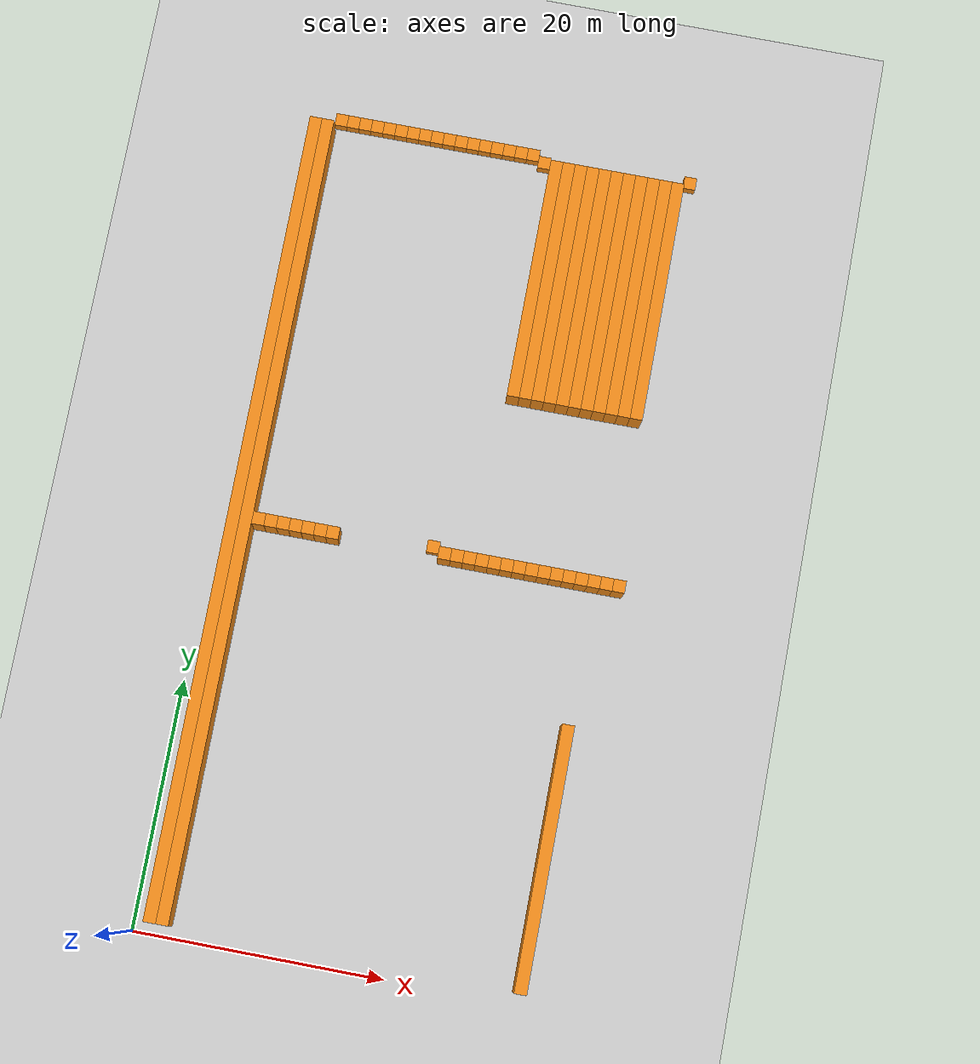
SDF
<sdf version="1.6">
 <world name="default">
  <include><uri>model://ground_plane</uri></include>
  <model name="unit_box_000">
   <pose>1.50    34.00     1.50 0 0 0</pose>
   <static>1</static>
   <link name="link">
    <inertial>
     <mass>5000</mass>
     <inertia><ixx>200</ixx><ixy>0</ixy><ixz>0</ixz><iyy>200</iyy><iyz>0</iyz><izz>200</izz></inertia>
    </inertial>
    <collision name="collision"><geometry><box><size>1 66 3</size></box></geometry></collision>
    <visual name="visual">
     <geometry><box><size>1 66 3</size></box></geometry>
     <material>
      <script><name>Gazebo/Orange</name><uri>file://media/materials/scripts/gazebo.material</uri></script>
     </material>
    </visual>
   </link>
  </model>
  <model name="unit_box_001">
   <pose>2.50    34.00     1.50 0 0 0</pose>
   <static>1</static>
   <link name="link">
    <inertial>
     <mass>5000</mass>
     <inertia><ixx>200</ixx><ixy>0</ixy><ixz>0</ixz><iyy>200</iyy><iyz>0</iyz><izz>200</izz></inertia>
    </inertial>
    <collision name="collision"><geometry><box><size>1 66 3</size></box></geometry></collision>
    <visual name="visual">
     <geometry><box><size>1 66 3</size></box></geometry>
     <material>
      <script><name>Gazebo/Orange</name><uri>file://media/materials/scripts/gazebo.material</uri></script>
     </material>
    </visual>
   </link>
  </model>
  <model name="unit_box_003">
   <pose>3.50    33.50     1.50 0 0 0</pose>
   <static>1</static>
   <link name="link">
    <inertial>
     <mass>5000</mass>
     <inertia><ixx>200</ixx><ixy>0</ixy><ixz>0</ixz><iyy>200</iyy><iyz>0</iyz><izz>200</izz></inertia>
    </inertial>
    <collision name="collision"><geometry><box><size>1 1 3</size></box></geometry></collision>
    <visual name="visual">
     <geometry><box><size>1 1 3</size></box></geometry>
     <material>
      <script><name>Gazebo/Orange</name><uri>file://media/materials/scripts/gazebo.material</uri></script>
     </material>
    </visual>
   </link>
  </model>
  <model name="unit_box_004">
   <pose>3.50    67.50     1.50 0 0 0</pose>
   <static>1</static>
   <link name="link">
    <inertial>
     <mass>5000</mass>
     <inertia><ixx>200</ixx><ixy>0</ixy><ixz>0</ixz><iyy>200</iyy><iyz>0</iyz><izz>200</izz></inertia>
    </inertial>
    <collision name="collision"><geometry><box><size>1 1 1</size></box></geometry></collision>
    <visual name="visual">
     <geometry><box><size>1 1 1</size></box></geometry>
     <material>
      <script><name>Gazebo/Orange</name><uri>file://media/materials/scripts/gazebo.material</uri></script>
     </material>
    </visual>
   </link>
  </model>
  <model name="unit_box_006">
   <pose>4.50    33.50     1.50 0 0 0</pose>
   <static>1</static>
   <link name="link">
    <inertial>
     <mass>5000</mass>
     <inertia><ixx>200</ixx><ixy>0</ixy><ixz>0</ixz><iyy>200</iyy><iyz>0</iyz><izz>200</izz></inertia>
    </inertial>
    <collision name="collision"><geometry><box><size>1 1 3</size></box></geometry></collision>
    <visual name="visual">
     <geometry><box><size>1 1 3</size></box></geometry>
     <material>
      <script><name>Gazebo/Orange</name><uri>file://media/materials/scripts/gazebo.material</uri></script>
     </material>
    </visual>
   </link>
  </model>
  <model name="unit_box_007">
   <pose>4.50    67.50     1.50 0 0 0</pose>
   <static>1</static>
   <link name="link">
    <inertial>
     <mass>5000</mass>
     <inertia><ixx>200</ixx><ixy>0</ixy><ixz>0</ixz><iyy>200</iyy><iyz>0</iyz><izz>200</izz></inertia>
    </inertial>
    <collision name="collision"><geometry><box><size>1 1 1</size></box></geometry></collision>
    <visual name="visual">
     <geometry><box><size>1 1 1</size></box></geometry>
     <material>
      <script><name>Gazebo/Orange</name><uri>file://media/materials/scripts/gazebo.material</uri></script>
     </material>
    </visual>
   </link>
  </model>
  <model name="unit_box_009">
   <pose>5.50    33.50     1.50 0 0 0</pose>
   <static>1</static>
   <link name="link">
    <inertial>
     <mass>5000</mass>
     <inertia><ixx>200</ixx><ixy>0</ixy><ixz>0</ixz><iyy>200</iyy><iyz>0</iyz><izz>200</izz></inertia>
    </inertial>
    <collision name="collision"><geometry><box><size>1 1 3</size></box></geometry></collision>
    <visual name="visual">
     <geometry><box><size>1 1 3</size></box></geometry>
     <material>
      <script><name>Gazebo/Orange</name><uri>file://media/materials/scripts/gazebo.material</uri></script>
     </material>
    </visual>
   </link>
  </model>
  <model name="unit_box_010">
   <pose>5.50    67.50     1.50 0 0 0</pose>
   <static>1</static>
   <link name="link">
    <inertial>
     <mass>5000</mass>
     <inertia><ixx>200</ixx><ixy>0</ixy><ixz>0</ixz><iyy>200</iyy><iyz>0</iyz><izz>200</izz></inertia>
    </inertial>
    <collision name="collision"><geometry><box><size>1 1 1</size></box></geometry></collision>
    <visual name="visual">
     <geometry><box><size>1 1 1</size></box></geometry>
     <material>
      <script><name>Gazebo/Orange</name><uri>file://media/materials/scripts/gazebo.material</uri></script>
     </material>
    </visual>
   </link>
  </model>
  <model name="unit_box_012">
   <pose>6.50    33.50     1.50 0 0 0</pose>
   <static>1</static>
   <link name="link">
    <inertial>
     <mass>5000</mass>
     <inertia><ixx>200</ixx><ixy>0</ixy><ixz>0</ixz><iyy>200</iyy><iyz>0</iyz><izz>200</izz></inertia>
    </inertial>
    <collision name="collision"><geometry><box><size>1 1 3</size></box></geometry></collision>
    <visual name="visual">
     <geometry><box><size>1 1 3</size></box></geometry>
     <material>
      <script><name>Gazebo/Orange</name><uri>file://media/materials/scripts/gazebo.material</uri></script>
     </material>
    </visual>
   </link>
  </model>
  <model name="unit_box_013">
   <pose>6.50    67.50     1.50 0 0 0</pose>
   <static>1</static>
   <link name="link">
    <inertial>
     <mass>5000</mass>
     <inertia><ixx>200</ixx><ixy>0</ixy><ixz>0</ixz><iyy>200</iyy><iyz>0</iyz><izz>200</izz></inertia>
    </inertial>
    <collision name="collision"><geometry><box><size>1 1 1</size></box></geometry></collision>
    <visual name="visual">
     <geometry><box><size>1 1 1</size></box></geometry>
     <material>
      <script><name>Gazebo/Orange</name><uri>file://media/materials/scripts/gazebo.material</uri></script>
     </material>
    </visual>
   </link>
  </model>
  <model name="unit_box_015">
   <pose>7.50    33.50     1.50 0 0 0</pose>
   <static>1</static>
   <link name="link">
    <inertial>
     <mass>5000</mass>
     <inertia><ixx>200</ixx><ixy>0</ixy><ixz>0</ixz><iyy>200</iyy><iyz>0</iyz><izz>200</izz></inertia>
    </inertial>
    <collision name="collision"><geometry><box><size>1 1 3</size></box></geometry></collision>
    <visual name="visual">
     <geometry><box><size>1 1 3</size></box></geometry>
     <material>
      <script><name>Gazebo/Orange</name><uri>file://media/materials/scripts/gazebo.material</uri></script>
     </material>
    </visual>
   </link>
  </model>
  <model name="unit_box_016">
   <pose>7.50    67.50     1.50 0 0 0</pose>
   <static>1</static>
   <link name="link">
    <inertial>
     <mass>5000</mass>
     <inertia><ixx>200</ixx><ixy>0</ixy><ixz>0</ixz><iyy>200</iyy><iyz>0</iyz><izz>200</izz></inertia>
    </inertial>
    <collision name="collision"><geometry><box><size>1 1 1</size></box></geometry></collision>
    <visual name="visual">
     <geometry><box><size>1 1 1</size></box></geometry>
     <material>
      <script><name>Gazebo/Orange</name><uri>file://media/materials/scripts/gazebo.material</uri></script>
     </material>
    </visual>
   </link>
  </model>
  <model name="unit_box_018">
   <pose>8.50    33.50     1.50 0 0 0</pose>
   <static>1</static>
   <link name="link">
    <inertial>
     <mass>5000</mass>
     <inertia><ixx>200</ixx><ixy>0</ixy><ixz>0</ixz><iyy>200</iyy><iyz>0</iyz><izz>200</izz></inertia>
    </inertial>
    <collision name="collision"><geometry><box><size>1 1 3</size></box></geometry></collision>
    <visual name="visual">
     <geometry><box><size>1 1 3</size></box></geometry>
     <material>
      <script><name>Gazebo/Orange</name><uri>file://media/materials/scripts/gazebo.material</uri></script>
     </material>
    </visual>
   </link>
  </model>
  <model name="unit_box_019">
   <pose>8.50    67.50     1.50 0 0 0</pose>
   <static>1</static>
   <link name="link">
    <inertial>
     <mass>5000</mass>
     <inertia><ixx>200</ixx><ixy>0</ixy><ixz>0</ixz><iyy>200</iyy><iyz>0</iyz><izz>200</izz></inertia>
    </inertial>
    <collision name="collision"><geometry><box><size>1 1 1</size></box></geometry></collision>
    <visual name="visual">
     <geometry><box><size>1 1 1</size></box></geometry>
     <material>
      <script><name>Gazebo/Orange</name><uri>file://media/materials/scripts/gazebo.material</uri></script>
     </material>
    </visual>
   </link>
  </model>
  <model name="unit_box_021">
   <pose>9.50    33.50     1.50 0 0 0</pose>
   <static>1</static>
   <link name="link">
    <inertial>
     <mass>5000</mass>
     <inertia><ixx>200</ixx><ixy>0</ixy><ixz>0</ixz><iyy>200</iyy><iyz>0</iyz><izz>200</izz></inertia>
    </inertial>
    <collision name="collision"><geometry><box><size>1 1 3</size></box></geometry></collision>
    <visual name="visual">
     <geometry><box><size>1 1 3</size></box></geometry>
     <material>
      <script><name>Gazebo/Orange</name><uri>file://media/materials/scripts/gazebo.material</uri></script>
     </material>
    </visual>
   </link>
  </model>
  <model name="unit_box_022">
   <pose>9.50    67.50     1.50 0 0 0</pose>
   <static>1</static>
   <link name="link">
    <inertial>
     <mass>5000</mass>
     <inertia><ixx>200</ixx><ixy>0</ixy><ixz>0</ixz><iyy>200</iyy><iyz>0</iyz><izz>200</izz></inertia>
    </inertial>
    <collision name="collision"><geometry><box><size>1 1 1</size></box></geometry></collision>
    <visual name="visual">
     <geometry><box><size>1 1 1</size></box></geometry>
     <material>
      <script><name>Gazebo/Orange</name><uri>file://media/materials/scripts/gazebo.material</uri></script>
     </material>
    </visual>
   </link>
  </model>
  <model name="unit_box_024">
   <pose>10.50    67.50     1.50 0 0 0</pose>
   <static>1</static>
   <link name="link">
    <inertial>
     <mass>5000</mass>
     <inertia><ixx>200</ixx><ixy>0</ixy><ixz>0</ixz><iyy>200</iyy><iyz>0</iyz><izz>200</izz></inertia>
    </inertial>
    <collision name="collision"><geometry><box><size>1 1 1</size></box></geometry></collision>
    <visual name="visual">
     <geometry><box><size>1 1 1</size></box></geometry>
     <material>
      <script><name>Gazebo/Orange</name><uri>file://media/materials/scripts/gazebo.material</uri></script>
     </material>
    </visual>
   </link>
  </model>
  <model name="unit_box_026">
   <pose>11.50    67.50     1.50 0 0 0</pose>
   <static>1</static>
   <link name="link">
    <inertial>
     <mass>5000</mass>
     <inertia><ixx>200</ixx><ixy>0</ixy><ixz>0</ixz><iyy>200</iyy><iyz>0</iyz><izz>200</izz></inertia>
    </inertial>
    <collision name="collision"><geometry><box><size>1 1 1</size></box></geometry></collision>
    <visual name="visual">
     <geometry><box><size>1 1 1</size></box></geometry>
     <material>
      <script><name>Gazebo/Orange</name><uri>file://media/materials/scripts/gazebo.material</uri></script>
     </material>
    </visual>
   </link>
  </model>
  <model name="unit_box_028">
   <pose>12.50    67.50     1.50 0 0 0</pose>
   <static>1</static>
   <link name="link">
    <inertial>
     <mass>5000</mass>
     <inertia><ixx>200</ixx><ixy>0</ixy><ixz>0</ixz><iyy>200</iyy><iyz>0</iyz><izz>200</izz></inertia>
    </inertial>
    <collision name="collision"><geometry><box><size>1 1 1</size></box></geometry></collision>
    <visual name="visual">
     <geometry><box><size>1 1 1</size></box></geometry>
     <material>
      <script><name>Gazebo/Orange</name><uri>file://media/materials/scripts/gazebo.material</uri></script>
     </material>
    </visual>
   </link>
  </model>
  <model name="unit_box_030">
   <pose>13.50    67.50     1.50 0 0 0</pose>
   <static>1</static>
   <link name="link">
    <inertial>
     <mass>5000</mass>
     <inertia><ixx>200</ixx><ixy>0</ixy><ixz>0</ixz><iyy>200</iyy><iyz>0</iyz><izz>200</izz></inertia>
    </inertial>
    <collision name="collision"><geometry><box><size>1 1 1</size></box></geometry></collision>
    <visual name="visual">
     <geometry><box><size>1 1 1</size></box></geometry>
     <material>
      <script><name>Gazebo/Orange</name><uri>file://media/materials/scripts/gazebo.material</uri></script>
     </material>
    </visual>
   </link>
  </model>
  <model name="unit_box_032">
   <pose>14.50    67.50     1.50 0 0 0</pose>
   <static>1</static>
   <link name="link">
    <inertial>
     <mass>5000</mass>
     <inertia><ixx>200</ixx><ixy>0</ixy><ixz>0</ixz><iyy>200</iyy><iyz>0</iyz><izz>200</izz></inertia>
    </inertial>
    <collision name="collision"><geometry><box><size>1 1 1</size></box></geometry></collision>
    <visual name="visual">
     <geometry><box><size>1 1 1</size></box></geometry>
     <material>
      <script><name>Gazebo/Orange</name><uri>file://media/materials/scripts/gazebo.material</uri></script>
     </material>
    </visual>
   </link>
  </model>
  <model name="unit_box_034">
   <pose>15.50    67.50     1.50 0 0 0</pose>
   <static>1</static>
   <link name="link">
    <inertial>
     <mass>5000</mass>
     <inertia><ixx>200</ixx><ixy>0</ixy><ixz>0</ixz><iyy>200</iyy><iyz>0</iyz><izz>200</izz></inertia>
    </inertial>
    <collision name="collision"><geometry><box><size>1 1 1</size></box></geometry></collision>
    <visual name="visual">
     <geometry><box><size>1 1 1</size></box></geometry>
     <material>
      <script><name>Gazebo/Orange</name><uri>file://media/materials/scripts/gazebo.material</uri></script>
     </material>
    </visual>
   </link>
  </model>
  <model name="unit_box_036">
   <pose>16.50    67.50     1.50 0 0 0</pose>
   <static>1</static>
   <link name="link">
    <inertial>
     <mass>5000</mass>
     <inertia><ixx>200</ixx><ixy>0</ixy><ixz>0</ixz><iyy>200</iyy><iyz>0</iyz><izz>200</izz></inertia>
    </inertial>
    <collision name="collision"><geometry><box><size>1 1 1</size></box></geometry></collision>
    <visual name="visual">
     <geometry><box><size>1 1 1</size></box></geometry>
     <material>
      <script><name>Gazebo/Orange</name><uri>file://media/materials/scripts/gazebo.material</uri></script>
     </material>
    </visual>
   </link>
  </model>
  <model name="unit_box_038">
   <pose>17.50    34.00     1.50 0 0 0</pose>
   <static>1</static>
   <link name="link">
    <inertial>
     <mass>5000</mass>
     <inertia><ixx>200</ixx><ixy>0</ixy><ixz>0</ixz><iyy>200</iyy><iyz>0</iyz><izz>200</izz></inertia>
    </inertial>
    <collision name="collision"><geometry><box><size>1 1 1</size></box></geometry></collision>
    <visual name="visual">
     <geometry><box><size>1 1 1</size></box></geometry>
     <material>
      <script><name>Gazebo/Orange</name><uri>file://media/materials/scripts/gazebo.material</uri></script>
     </material>
    </visual>
   </link>
  </model>
  <model name="unit_box_039">
   <pose>17.50    67.50     1.50 0 0 0</pose>
   <static>1</static>
   <link name="link">
    <inertial>
     <mass>5000</mass>
     <inertia><ixx>200</ixx><ixy>0</ixy><ixz>0</ixz><iyy>200</iyy><iyz>0</iyz><izz>200</izz></inertia>
    </inertial>
    <collision name="collision"><geometry><box><size>1 1 1</size></box></geometry></collision>
    <visual name="visual">
     <geometry><box><size>1 1 1</size></box></geometry>
     <material>
      <script><name>Gazebo/Orange</name><uri>file://media/materials/scripts/gazebo.material</uri></script>
     </material>
    </visual>
   </link>
  </model>
  <model name="unit_box_041">
   <pose>18.50    33.50     1.50 0 0 0</pose>
   <static>1</static>
   <link name="link">
    <inertial>
     <mass>5000</mass>
     <inertia><ixx>200</ixx><ixy>0</ixy><ixz>0</ixz><iyy>200</iyy><iyz>0</iyz><izz>200</izz></inertia>
    </inertial>
    <collision name="collision"><geometry><box><size>1 1 3</size></box></geometry></collision>
    <visual name="visual">
     <geometry><box><size>1 1 3</size></box></geometry>
     <material>
      <script><name>Gazebo/Orange</name><uri>file://media/materials/scripts/gazebo.material</uri></script>
     </material>
    </visual>
   </link>
  </model>
  <model name="unit_box_042">
   <pose>18.50    67.50     1.50 0 0 0</pose>
   <static>1</static>
   <link name="link">
    <inertial>
     <mass>5000</mass>
     <inertia><ixx>200</ixx><ixy>0</ixy><ixz>0</ixz><iyy>200</iyy><iyz>0</iyz><izz>200</izz></inertia>
    </inertial>
    <collision name="collision"><geometry><box><size>1 1 1</size></box></geometry></collision>
    <visual name="visual">
     <geometry><box><size>1 1 1</size></box></geometry>
     <material>
      <script><name>Gazebo/Orange</name><uri>file://media/materials/scripts/gazebo.material</uri></script>
     </material>
    </visual>
   </link>
  </model>
  <model name="unit_box_044">
   <pose>19.50    33.50     1.50 0 0 0</pose>
   <static>1</static>
   <link name="link">
    <inertial>
     <mass>5000</mass>
     <inertia><ixx>200</ixx><ixy>0</ixy><ixz>0</ixz><iyy>200</iyy><iyz>0</iyz><izz>200</izz></inertia>
    </inertial>
    <collision name="collision"><geometry><box><size>1 1 3</size></box></geometry></collision>
    <visual name="visual">
     <geometry><box><size>1 1 3</size></box></geometry>
     <material>
      <script><name>Gazebo/Orange</name><uri>file://media/materials/scripts/gazebo.material</uri></script>
     </material>
    </visual>
   </link>
  </model>
  <model name="unit_box_045">
   <pose>19.50    67.50     1.50 0 0 0</pose>
   <static>1</static>
   <link name="link">
    <inertial>
     <mass>5000</mass>
     <inertia><ixx>200</ixx><ixy>0</ixy><ixz>0</ixz><iyy>200</iyy><iyz>0</iyz><izz>200</izz></inertia>
    </inertial>
    <collision name="collision"><geometry><box><size>1 1 1</size></box></geometry></collision>
    <visual name="visual">
     <geometry><box><size>1 1 1</size></box></geometry>
     <material>
      <script><name>Gazebo/Orange</name><uri>file://media/materials/scripts/gazebo.material</uri></script>
     </material>
    </visual>
   </link>
  </model>
  <model name="unit_box_047">
   <pose>20.50    33.50     1.50 0 0 0</pose>
   <static>1</static>
   <link name="link">
    <inertial>
     <mass>5000</mass>
     <inertia><ixx>200</ixx><ixy>0</ixy><ixz>0</ixz><iyy>200</iyy><iyz>0</iyz><izz>200</izz></inertia>
    </inertial>
    <collision name="collision"><geometry><box><size>1 1 3</size></box></geometry></collision>
    <visual name="visual">
     <geometry><box><size>1 1 3</size></box></geometry>
     <material>
      <script><name>Gazebo/Orange</name><uri>file://media/materials/scripts/gazebo.material</uri></script>
     </material>
    </visual>
   </link>
  </model>
  <model name="unit_box_048">
   <pose>20.50    67.00     1.50 0 0 0</pose>
   <static>1</static>
   <link name="link">
    <inertial>
     <mass>5000</mass>
     <inertia><ixx>200</ixx><ixy>0</ixy><ixz>0</ixz><iyy>200</iyy><iyz>0</iyz><izz>200</izz></inertia>
    </inertial>
    <collision name="collision"><geometry><box><size>1 1 1</size></box></geometry></collision>
    <visual name="visual">
     <geometry><box><size>1 1 1</size></box></geometry>
     <material>
      <script><name>Gazebo/Orange</name><uri>file://media/materials/scripts/gazebo.material</uri></script>
     </material>
    </visual>
   </link>
  </model>
  <model name="unit_box_050">
   <pose>21.50    33.50     1.50 0 0 0</pose>
   <static>1</static>
   <link name="link">
    <inertial>
     <mass>5000</mass>
     <inertia><ixx>200</ixx><ixy>0</ixy><ixz>0</ixz><iyy>200</iyy><iyz>0</iyz><izz>200</izz></inertia>
    </inertial>
    <collision name="collision"><geometry><box><size>1 1 3</size></box></geometry></collision>
    <visual name="visual">
     <geometry><box><size>1 1 3</size></box></geometry>
     <material>
      <script><name>Gazebo/Orange</name><uri>file://media/materials/scripts/gazebo.material</uri></script>
     </material>
    </visual>
   </link>
  </model>
  <model name="unit_box_051">
   <pose>21.50    57.00     1.50 0 0 0</pose>
   <static>1</static>
   <link name="link">
    <inertial>
     <mass>5000</mass>
     <inertia><ixx>200</ixx><ixy>0</ixy><ixz>0</ixz><iyy>200</iyy><iyz>0</iyz><izz>200</izz></inertia>
    </inertial>
    <collision name="collision"><geometry><box><size>1 20 3</size></box></geometry></collision>
    <visual name="visual">
     <geometry><box><size>1 20 3</size></box></geometry>
     <material>
      <script><name>Gazebo/Orange</name><uri>file://media/materials/scripts/gazebo.material</uri></script>
     </material>
    </visual>
   </link>
  </model>
  <model name="unit_box_053">
   <pose>22.50    33.50     1.50 0 0 0</pose>
   <static>1</static>
   <link name="link">
    <inertial>
     <mass>5000</mass>
     <inertia><ixx>200</ixx><ixy>0</ixy><ixz>0</ixz><iyy>200</iyy><iyz>0</iyz><izz>200</izz></inertia>
    </inertial>
    <collision name="collision"><geometry><box><size>1 1 3</size></box></geometry></collision>
    <visual name="visual">
     <geometry><box><size>1 1 3</size></box></geometry>
     <material>
      <script><name>Gazebo/Orange</name><uri>file://media/materials/scripts/gazebo.material</uri></script>
     </material>
    </visual>
   </link>
  </model>
  <model name="unit_box_054">
   <pose>22.50    57.00     1.50 0 0 0</pose>
   <static>1</static>
   <link name="link">
    <inertial>
     <mass>5000</mass>
     <inertia><ixx>200</ixx><ixy>0</ixy><ixz>0</ixz><iyy>200</iyy><iyz>0</iyz><izz>200</izz></inertia>
    </inertial>
    <collision name="collision"><geometry><box><size>1 20 3</size></box></geometry></collision>
    <visual name="visual">
     <geometry><box><size>1 20 3</size></box></geometry>
     <material>
      <script><name>Gazebo/Orange</name><uri>file://media/materials/scripts/gazebo.material</uri></script>
     </material>
    </visual>
   </link>
  </model>
  <model name="unit_box_056">
   <pose>23.50    33.50     1.50 0 0 0</pose>
   <static>1</static>
   <link name="link">
    <inertial>
     <mass>5000</mass>
     <inertia><ixx>200</ixx><ixy>0</ixy><ixz>0</ixz><iyy>200</iyy><iyz>0</iyz><izz>200</izz></inertia>
    </inertial>
    <collision name="collision"><geometry><box><size>1 1 3</size></box></geometry></collision>
    <visual name="visual">
     <geometry><box><size>1 1 3</size></box></geometry>
     <material>
      <script><name>Gazebo/Orange</name><uri>file://media/materials/scripts/gazebo.material</uri></script>
     </material>
    </visual>
   </link>
  </model>
  <model name="unit_box_057">
   <pose>23.50    57.00     1.50 0 0 0</pose>
   <static>1</static>
   <link name="link">
    <inertial>
     <mass>5000</mass>
     <inertia><ixx>200</ixx><ixy>0</ixy><ixz>0</ixz><iyy>200</iyy><iyz>0</iyz><izz>200</izz></inertia>
    </inertial>
    <collision name="collision"><geometry><box><size>1 20 3</size></box></geometry></collision>
    <visual name="visual">
     <geometry><box><size>1 20 3</size></box></geometry>
     <material>
      <script><name>Gazebo/Orange</name><uri>file://media/materials/scripts/gazebo.material</uri></script>
     </material>
    </visual>
   </link>
  </model>
  <model name="unit_box_059">
   <pose>24.50    33.50     1.50 0 0 0</pose>
   <static>1</static>
   <link name="link">
    <inertial>
     <mass>5000</mass>
     <inertia><ixx>200</ixx><ixy>0</ixy><ixz>0</ixz><iyy>200</iyy><iyz>0</iyz><izz>200</izz></inertia>
    </inertial>
    <collision name="collision"><geometry><box><size>1 1 3</size></box></geometry></collision>
    <visual name="visual">
     <geometry><box><size>1 1 3</size></box></geometry>
     <material>
      <script><name>Gazebo/Orange</name><uri>file://media/materials/scripts/gazebo.material</uri></script>
     </material>
    </visual>
   </link>
  </model>
  <model name="unit_box_060">
   <pose>24.50    57.00     1.50 0 0 0</pose>
   <static>1</static>
   <link name="link">
    <inertial>
     <mass>5000</mass>
     <inertia><ixx>200</ixx><ixy>0</ixy><ixz>0</ixz><iyy>200</iyy><iyz>0</iyz><izz>200</izz></inertia>
    </inertial>
    <collision name="collision"><geometry><box><size>1 20 3</size></box></geometry></collision>
    <visual name="visual">
     <geometry><box><size>1 20 3</size></box></geometry>
     <material>
      <script><name>Gazebo/Orange</name><uri>file://media/materials/scripts/gazebo.material</uri></script>
     </material>
    </visual>
   </link>
  </model>
  <model name="unit_box_062">
   <pose>25.50    33.50     1.50 0 0 0</pose>
   <static>1</static>
   <link name="link">
    <inertial>
     <mass>5000</mass>
     <inertia><ixx>200</ixx><ixy>0</ixy><ixz>0</ixz><iyy>200</iyy><iyz>0</iyz><izz>200</izz></inertia>
    </inertial>
    <collision name="collision"><geometry><box><size>1 1 3</size></box></geometry></collision>
    <visual name="visual">
     <geometry><box><size>1 1 3</size></box></geometry>
     <material>
      <script><name>Gazebo/Orange</name><uri>file://media/materials/scripts/gazebo.material</uri></script>
     </material>
    </visual>
   </link>
  </model>
  <model name="unit_box_063">
   <pose>25.50    57.00     1.50 0 0 0</pose>
   <static>1</static>
   <link name="link">
    <inertial>
     <mass>5000</mass>
     <inertia><ixx>200</ixx><ixy>0</ixy><ixz>0</ixz><iyy>200</iyy><iyz>0</iyz><izz>200</izz></inertia>
    </inertial>
    <collision name="collision"><geometry><box><size>1 20 3</size></box></geometry></collision>
    <visual name="visual">
     <geometry><box><size>1 20 3</size></box></geometry>
     <material>
      <script><name>Gazebo/Orange</name><uri>file://media/materials/scripts/gazebo.material</uri></script>
     </material>
    </visual>
   </link>
  </model>
  <model name="unit_box_065">
   <pose>26.50    33.50     1.50 0 0 0</pose>
   <static>1</static>
   <link name="link">
    <inertial>
     <mass>5000</mass>
     <inertia><ixx>200</ixx><ixy>0</ixy><ixz>0</ixz><iyy>200</iyy><iyz>0</iyz><izz>200</izz></inertia>
    </inertial>
    <collision name="collision"><geometry><box><size>1 1 3</size></box></geometry></collision>
    <visual name="visual">
     <geometry><box><size>1 1 3</size></box></geometry>
     <material>
      <script><name>Gazebo/Orange</name><uri>file://media/materials/scripts/gazebo.material</uri></script>
     </material>
    </visual>
   </link>
  </model>
  <model name="unit_box_066">
   <pose>26.50    57.00     1.50 0 0 0</pose>
   <static>1</static>
   <link name="link">
    <inertial>
     <mass>5000</mass>
     <inertia><ixx>200</ixx><ixy>0</ixy><ixz>0</ixz><iyy>200</iyy><iyz>0</iyz><izz>200</izz></inertia>
    </inertial>
    <collision name="collision"><geometry><box><size>1 20 3</size></box></geometry></collision>
    <visual name="visual">
     <geometry><box><size>1 20 3</size></box></geometry>
     <material>
      <script><name>Gazebo/Orange</name><uri>file://media/materials/scripts/gazebo.material</uri></script>
     </material>
    </visual>
   </link>
  </model>
  <model name="unit_box_068">
   <pose>27.50    33.50     1.50 0 0 0</pose>
   <static>1</static>
   <link name="link">
    <inertial>
     <mass>5000</mass>
     <inertia><ixx>200</ixx><ixy>0</ixy><ixz>0</ixz><iyy>200</iyy><iyz>0</iyz><izz>200</izz></inertia>
    </inertial>
    <collision name="collision"><geometry><box><size>1 1 3</size></box></geometry></collision>
    <visual name="visual">
     <geometry><box><size>1 1 3</size></box></geometry>
     <material>
      <script><name>Gazebo/Orange</name><uri>file://media/materials/scripts/gazebo.material</uri></script>
     </material>
    </visual>
   </link>
  </model>
  <model name="unit_box_069">
   <pose>27.50    57.00     1.50 0 0 0</pose>
   <static>1</static>
   <link name="link">
    <inertial>
     <mass>5000</mass>
     <inertia><ixx>200</ixx><ixy>0</ixy><ixz>0</ixz><iyy>200</iyy><iyz>0</iyz><izz>200</izz></inertia>
    </inertial>
    <collision name="collision"><geometry><box><size>1 20 3</size></box></geometry></collision>
    <visual name="visual">
     <geometry><box><size>1 20 3</size></box></geometry>
     <material>
      <script><name>Gazebo/Orange</name><uri>file://media/materials/scripts/gazebo.material</uri></script>
     </material>
    </visual>
   </link>
  </model>
  <model name="unit_box_071">
   <pose>28.50    33.50     1.50 0 0 0</pose>
   <static>1</static>
   <link name="link">
    <inertial>
     <mass>5000</mass>
     <inertia><ixx>200</ixx><ixy>0</ixy><ixz>0</ixz><iyy>200</iyy><iyz>0</iyz><izz>200</izz></inertia>
    </inertial>
    <collision name="collision"><geometry><box><size>1 1 3</size></box></geometry></collision>
    <visual name="visual">
     <geometry><box><size>1 1 3</size></box></geometry>
     <material>
      <script><name>Gazebo/Orange</name><uri>file://media/materials/scripts/gazebo.material</uri></script>
     </material>
    </visual>
   </link>
  </model>
  <model name="unit_box_072">
   <pose>28.50    57.00     1.50 0 0 0</pose>
   <static>1</static>
   <link name="link">
    <inertial>
     <mass>5000</mass>
     <inertia><ixx>200</ixx><ixy>0</ixy><ixz>0</ixz><iyy>200</iyy><iyz>0</iyz><izz>200</izz></inertia>
    </inertial>
    <collision name="collision"><geometry><box><size>1 20 3</size></box></geometry></collision>
    <visual name="visual">
     <geometry><box><size>1 20 3</size></box></geometry>
     <material>
      <script><name>Gazebo/Orange</name><uri>file://media/materials/scripts/gazebo.material</uri></script>
     </material>
    </visual>
   </link>
  </model>
  <model name="unit_box_074">
   <pose>29.50    33.50     1.50 0 0 0</pose>
   <static>1</static>
   <link name="link">
    <inertial>
     <mass>5000</mass>
     <inertia><ixx>200</ixx><ixy>0</ixy><ixz>0</ixz><iyy>200</iyy><iyz>0</iyz><izz>200</izz></inertia>
    </inertial>
    <collision name="collision"><geometry><box><size>1 1 3</size></box></geometry></collision>
    <visual name="visual">
     <geometry><box><size>1 1 3</size></box></geometry>
     <material>
      <script><name>Gazebo/Orange</name><uri>file://media/materials/scripts/gazebo.material</uri></script>
     </material>
    </visual>
   </link>
  </model>
  <model name="unit_box_075">
   <pose>29.50    57.00     1.50 0 0 0</pose>
   <static>1</static>
   <link name="link">
    <inertial>
     <mass>5000</mass>
     <inertia><ixx>200</ixx><ixy>0</ixy><ixz>0</ixz><iyy>200</iyy><iyz>0</iyz><izz>200</izz></inertia>
    </inertial>
    <collision name="collision"><geometry><box><size>1 20 3</size></box></geometry></collision>
    <visual name="visual">
     <geometry><box><size>1 20 3</size></box></geometry>
     <material>
      <script><name>Gazebo/Orange</name><uri>file://media/materials/scripts/gazebo.material</uri></script>
     </material>
    </visual>
   </link>
  </model>
  <model name="unit_box_076">
   <pose>30.50    11.50     1.50 0 0 0</pose>
   <static>1</static>
   <link name="link">
    <inertial>
     <mass>5000</mass>
     <inertia><ixx>200</ixx><ixy>0</ixy><ixz>0</ixz><iyy>200</iyy><iyz>0</iyz><izz>200</izz></inertia>
    </inertial>
    <collision name="collision"><geometry><box><size>1 21 3</size></box></geometry></collision>
    <visual name="visual">
     <geometry><box><size>1 21 3</size></box></geometry>
     <material>
      <script><name>Gazebo/Orange</name><uri>file://media/materials/scripts/gazebo.material</uri></script>
     </material>
    </visual>
   </link>
  </model>
  <model name="unit_box_077">
   <pose>30.50    33.50     1.50 0 0 0</pose>
   <static>1</static>
   <link name="link">
    <inertial>
     <mass>5000</mass>
     <inertia><ixx>200</ixx><ixy>0</ixy><ixz>0</ixz><iyy>200</iyy><iyz>0</iyz><izz>200</izz></inertia>
    </inertial>
    <collision name="collision"><geometry><box><size>1 1 3</size></box></geometry></collision>
    <visual name="visual">
     <geometry><box><size>1 1 3</size></box></geometry>
     <material>
      <script><name>Gazebo/Orange</name><uri>file://media/materials/scripts/gazebo.material</uri></script>
     </material>
    </visual>
   </link>
  </model>
  <model name="unit_box_078">
   <pose>30.50    57.00     1.50 0 0 0</pose>
   <static>1</static>
   <link name="link">
    <inertial>
     <mass>5000</mass>
     <inertia><ixx>200</ixx><ixy>0</ixy><ixz>0</ixz><iyy>200</iyy><iyz>0</iyz><izz>200</izz></inertia>
    </inertial>
    <collision name="collision"><geometry><box><size>1 20 3</size></box></geometry></collision>
    <visual name="visual">
     <geometry><box><size>1 20 3</size></box></geometry>
     <material>
      <script><name>Gazebo/Orange</name><uri>file://media/materials/scripts/gazebo.material</uri></script>
     </material>
    </visual>
   </link>
  </model>
  <model name="unit_box_080">
   <pose>31.50    33.50     1.50 0 0 0</pose>
   <static>1</static>
   <link name="link">
    <inertial>
     <mass>5000</mass>
     <inertia><ixx>200</ixx><ixy>0</ixy><ixz>0</ixz><iyy>200</iyy><iyz>0</iyz><izz>200</izz></inertia>
    </inertial>
    <collision name="collision"><geometry><box><size>1 1 3</size></box></geometry></collision>
    <visual name="visual">
     <geometry><box><size>1 1 3</size></box></geometry>
     <material>
      <script><name>Gazebo/Orange</name><uri>file://media/materials/scripts/gazebo.material</uri></script>
     </material>
    </visual>
   </link>
  </model>
  <model name="unit_box_081">
   <pose>31.50    57.00     1.50 0 0 0</pose>
   <static>1</static>
   <link name="link">
    <inertial>
     <mass>5000</mass>
     <inertia><ixx>200</ixx><ixy>0</ixy><ixz>0</ixz><iyy>200</iyy><iyz>0</iyz><izz>200</izz></inertia>
    </inertial>
    <collision name="collision"><geometry><box><size>1 20 3</size></box></geometry></collision>
    <visual name="visual">
     <geometry><box><size>1 20 3</size></box></geometry>
     <material>
      <script><name>Gazebo/Orange</name><uri>file://media/materials/scripts/gazebo.material</uri></script>
     </material>
    </visual>
   </link>
  </model>
  <model name="unit_box_083">
   <pose>32.50    33.50     1.50 0 0 0</pose>
   <static>1</static>
   <link name="link">
    <inertial>
     <mass>5000</mass>
     <inertia><ixx>200</ixx><ixy>0</ixy><ixz>0</ixz><iyy>200</iyy><iyz>0</iyz><izz>200</izz></inertia>
    </inertial>
    <collision name="collision"><geometry><box><size>1 1 3</size></box></geometry></collision>
    <visual name="visual">
     <geometry><box><size>1 1 3</size></box></geometry>
     <material>
      <script><name>Gazebo/Orange</name><uri>file://media/materials/scripts/gazebo.material</uri></script>
     </material>
    </visual>
   </link>
  </model>
  <model name="unit_box_084">
   <pose>32.50    67.50     1.50 0 0 0</pose>
   <static>1</static>
   <link name="link">
    <inertial>
     <mass>5000</mass>
     <inertia><ixx>200</ixx><ixy>0</ixy><ixz>0</ixz><iyy>200</iyy><iyz>0</iyz><izz>200</izz></inertia>
    </inertial>
    <collision name="collision"><geometry><box><size>1 1 1</size></box></geometry></collision>
    <visual name="visual">
     <geometry><box><size>1 1 1</size></box></geometry>
     <material>
      <script><name>Gazebo/Orange</name><uri>file://media/materials/scripts/gazebo.material</uri></script>
     </material>
    </visual>
   </link>
  </model>
 </world>
</sdf>
